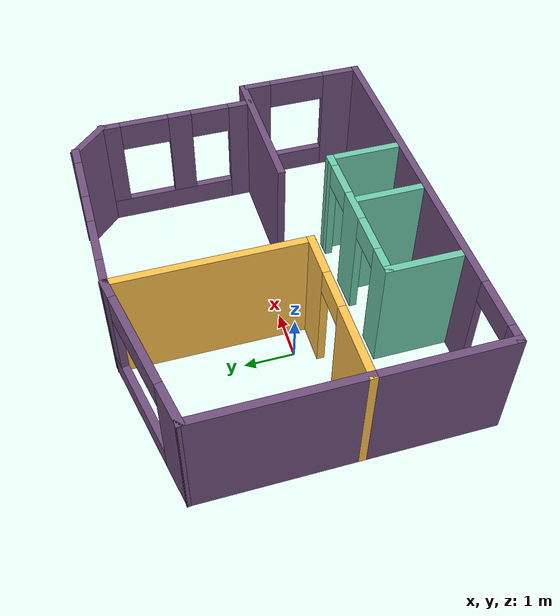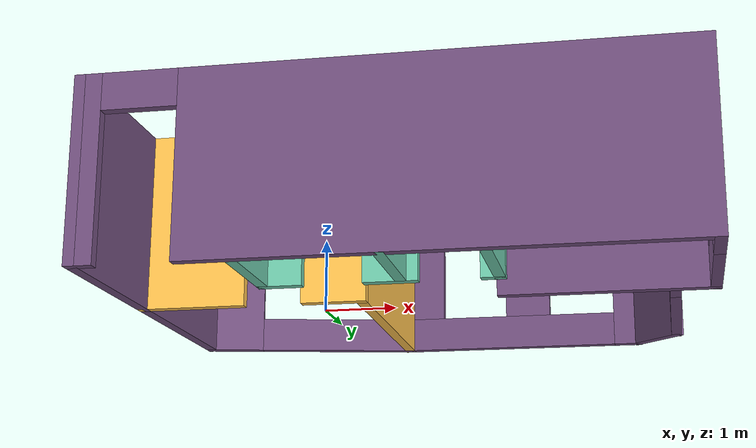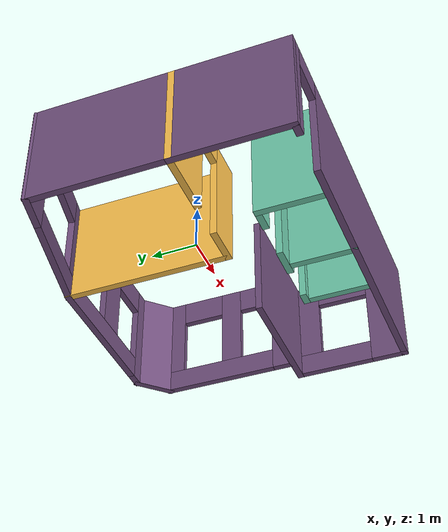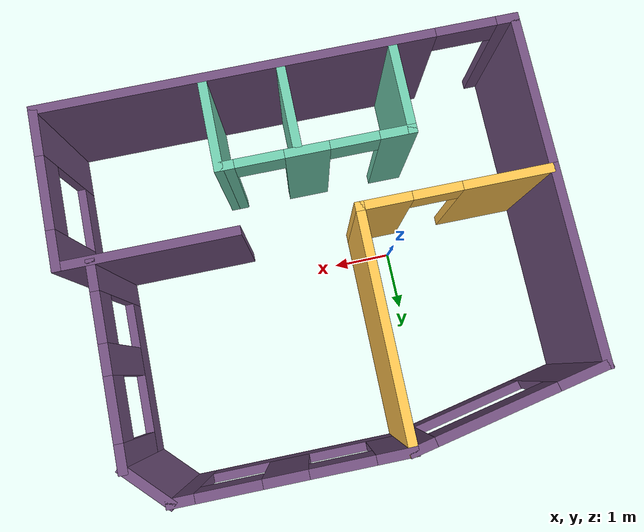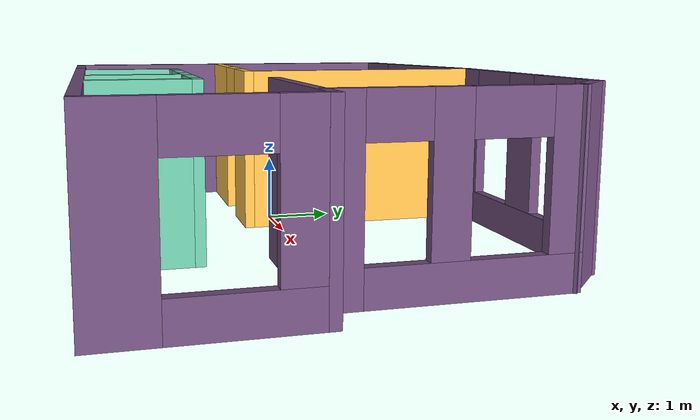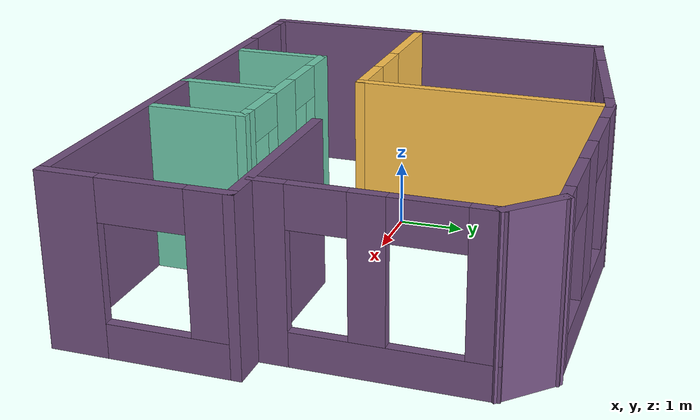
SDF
<?xml version='1.0'?>
<sdf version='1.6'>
  <model name='apartment-35'>
    <pose frame=''>1.41173 0.14806 0 0 -0 0</pose>
    <link name='Wall_0'>
      <pose frame=''>0.006768 -3.16806 0 0 -0 0</pose>
      <visual name='Wall_0_Visual_0'>
        <pose frame=''>-3.79978 0 1.25 0 -0 0</pose>
        <geometry>
          <box>
            <size>0.37543 0.15 2.5</size>
          </box>
        </geometry>
        <material>
          <script>
            <uri>file://media/materials/scripts/gazebo.material</uri>
            <name>Gazebo/Grey</name>
          </script>
          <ambient>0.443137 0.313726 0.494118 1</ambient>
        </material>
        <meta>
          <layer>0</layer>
        </meta>
      </visual>
      <collision name='Wall_0_Collision_0'>
        <geometry>
          <box>
            <size>0.37543 0.15 2.5</size>
          </box>
        </geometry>
        <pose frame=''>-3.79978 0 1.25 0 -0 0</pose>
      </collision>
      <visual name='Wall_0_Visual_1'>
        <pose frame=''>0.687715 0 1.25 0 -0 0</pose>
        <geometry>
          <box>
            <size>6.59957 0.15 2.5</size>
          </box>
        </geometry>
        <material>
          <script>
            <uri>file://media/materials/scripts/gazebo.material</uri>
            <name>Gazebo/Grey</name>
          </script>
          <ambient>0.443137 0.313726 0.494118 1</ambient>
        </material>
        <meta>
          <layer>0</layer>
        </meta>
      </visual>
      <collision name='Wall_0_Collision_1'>
        <geometry>
          <box>
            <size>6.59957 0.15 2.5</size>
          </box>
        </geometry>
        <pose frame=''>0.687715 0 1.25 0 -0 0</pose>
      </collision>
      <visual name='Wall_0_Visual_2'>
        <pose frame=''>-3.11207 0 2.25 0 -0 0</pose>
        <geometry>
          <box>
            <size>1 0.15 0.5</size>
          </box>
        </geometry>
        <material>
          <script>
            <uri>file://media/materials/scripts/gazebo.material</uri>
            <name>Gazebo/Grey</name>
          </script>
          <ambient>0.443137 0.313726 0.494118 1</ambient>
        </material>
        <meta>
          <layer>0</layer>
        </meta>
      </visual>
      <collision name='Wall_0_Collision_2'>
        <geometry>
          <box>
            <size>1 0.15 0.5</size>
          </box>
        </geometry>
        <pose frame=''>-3.11207 0 2.25 0 -0 0</pose>
      </collision>
    </link>
    <link name='Wall_10'>
      <pose frame=''>0.994046 3.13706 0 0 -0 -3.14153</pose>
      <visual name='Wall_10_Visual_0'>
        <pose frame=''>-1.66159 0 1.25 0 -0 0</pose>
        <geometry>
          <box>
            <size>0.426824 0.15 2.5</size>
          </box>
        </geometry>
        <material>
          <script>
            <uri>file://media/materials/scripts/gazebo.material</uri>
            <name>Gazebo/Grey</name>
          </script>
          <ambient>0.443137 0.313726 0.494118 1</ambient>
        </material>
        <meta>
          <layer>0</layer>
        </meta>
      </visual>
      <collision name='Wall_10_Collision_0'>
        <geometry>
          <box>
            <size>0.426824 0.15 2.5</size>
          </box>
        </geometry>
        <pose frame=''>-1.66159 0 1.25 0 -0 0</pose>
      </collision>
      <visual name='Wall_10_Visual_1'>
        <pose frame=''>0.213412 0 0.25 0 -0 0</pose>
        <geometry>
          <box>
            <size>3.32318 0.15 0.5</size>
          </box>
        </geometry>
        <material>
          <script>
            <uri>file://media/materials/scripts/gazebo.material</uri>
            <name>Gazebo/Grey</name>
          </script>
          <ambient>0.443137 0.313726 0.494118 1</ambient>
        </material>
        <meta>
          <layer>0</layer>
        </meta>
      </visual>
      <collision name='Wall_10_Collision_1'>
        <geometry>
          <box>
            <size>3.32318 0.15 0.5</size>
          </box>
        </geometry>
        <pose frame=''>0.213412 0 0.25 0 -0 0</pose>
      </collision>
      <visual name='Wall_10_Visual_2'>
        <pose frame=''>-0.103407 0 1.5 0 -0 0</pose>
        <geometry>
          <box>
            <size>0.689537 0.15 2</size>
          </box>
        </geometry>
        <material>
          <script>
            <uri>file://media/materials/scripts/gazebo.material</uri>
            <name>Gazebo/Grey</name>
          </script>
          <ambient>0.443137 0.313726 0.494118 1</ambient>
        </material>
        <meta>
          <layer>0</layer>
        </meta>
      </visual>
      <collision name='Wall_10_Collision_2'>
        <geometry>
          <box>
            <size>0.689537 0.15 2</size>
          </box>
        </geometry>
        <pose frame=''>-0.103407 0 1.5 0 -0 0</pose>
      </collision>
      <visual name='Wall_10_Visual_3'>
        <pose frame=''>1.55818 0 1.5 0 -0 0</pose>
        <geometry>
          <box>
            <size>0.633638 0.15 2</size>
          </box>
        </geometry>
        <material>
          <script>
            <uri>file://media/materials/scripts/gazebo.material</uri>
            <name>Gazebo/Grey</name>
          </script>
          <ambient>0.443137 0.313726 0.494118 1</ambient>
        </material>
        <meta>
          <layer>0</layer>
        </meta>
      </visual>
      <collision name='Wall_10_Collision_3'>
        <geometry>
          <box>
            <size>0.633638 0.15 2</size>
          </box>
        </geometry>
        <pose frame=''>1.55818 0 1.5 0 -0 0</pose>
      </collision>
      <visual name='Wall_10_Visual_4'>
        <pose frame=''>-0.948176 0 2.2 0 -0 0</pose>
        <geometry>
          <box>
            <size>1 0.15 0.6</size>
          </box>
        </geometry>
        <material>
          <script>
            <uri>file://media/materials/scripts/gazebo.material</uri>
            <name>Gazebo/Grey</name>
          </script>
          <ambient>0.443137 0.313726 0.494118 1</ambient>
        </material>
        <meta>
          <layer>0</layer>
        </meta>
      </visual>
      <collision name='Wall_10_Collision_4'>
        <geometry>
          <box>
            <size>1 0.15 0.6</size>
          </box>
        </geometry>
        <pose frame=''>-0.948176 0 2.2 0 -0 0</pose>
      </collision>
      <visual name='Wall_10_Visual_5'>
        <pose frame=''>0.741362 0 2.2 0 -0 0</pose>
        <geometry>
          <box>
            <size>1 0.15 0.6</size>
          </box>
        </geometry>
        <material>
          <script>
            <uri>file://media/materials/scripts/gazebo.material</uri>
            <name>Gazebo/Grey</name>
          </script>
          <ambient>0.443137 0.313726 0.494118 1</ambient>
        </material>
        <meta>
          <layer>0</layer>
        </meta>
      </visual>
      <collision name='Wall_10_Collision_5'>
        <geometry>
          <box>
            <size>1 0.15 0.6</size>
          </box>
        </geometry>
        <pose frame=''>0.741362 0 2.2 0 -0 0</pose>
      </collision>
    </link>
    <link name='Wall_11'>
      <collision name='Wall_11_Collision'>
        <geometry>
          <box>
            <size>3.901 0.15 2.5</size>
          </box>
        </geometry>
        <pose frame=''>0 0 1.25 0 -0 0</pose>
      </collision>
      <visual name='Wall_11_Visual'>
        <pose frame=''>0 0 1.25 0 -0 0</pose>
        <geometry>
          <box>
            <size>3.901 0.15 2.5</size>
          </box>
        </geometry>
        <material>
          <script>
            <uri>file://media/materials/scripts/gazebo.material</uri>
            <name>Gazebo/Grey</name>
          </script>
          <ambient>1 0.764706 0.305882 1</ambient>
        </material>
        <meta>
          <layer>0</layer>
        </meta>
      </visual>
      <pose frame=''>-0.805732 1.26144 0 0 -0 -1.5708</pose>
    </link>
    <link name='Wall_13'>
      <pose frame=''>-2.35573 -0.61406 0 0 -0 3.14159</pose>
      <visual name='Wall_13_Visual_0'>
        <pose frame=''>-1.16875 0 1.25 0 -0 0</pose>
        <geometry>
          <box>
            <size>0.912507 0.15 2.5</size>
          </box>
        </geometry>
        <material>
          <script>
            <uri>file://media/materials/scripts/gazebo.material</uri>
            <name>Gazebo/Grey</name>
          </script>
          <ambient>1 0.764706 0.305882 1</ambient>
        </material>
        <meta>
          <layer>0</layer>
        </meta>
      </visual>
      <collision name='Wall_13_Collision_0'>
        <geometry>
          <box>
            <size>0.912507 0.15 2.5</size>
          </box>
        </geometry>
        <pose frame=''>-1.16875 0 1.25 0 -0 0</pose>
      </collision>
      <visual name='Wall_13_Visual_1'>
        <pose frame=''>0.856253 0 1.25 0 -0 0</pose>
        <geometry>
          <box>
            <size>1.53749 0.15 2.5</size>
          </box>
        </geometry>
        <material>
          <script>
            <uri>file://media/materials/scripts/gazebo.material</uri>
            <name>Gazebo/Grey</name>
          </script>
          <ambient>1 0.764706 0.305882 1</ambient>
        </material>
        <meta>
          <layer>0</layer>
        </meta>
      </visual>
      <collision name='Wall_13_Collision_1'>
        <geometry>
          <box>
            <size>1.53749 0.15 2.5</size>
          </box>
        </geometry>
        <pose frame=''>0.856253 0 1.25 0 -0 0</pose>
      </collision>
      <visual name='Wall_13_Visual_2'>
        <pose frame=''>-0.312493 0 2.25 0 -0 0</pose>
        <geometry>
          <box>
            <size>0.8 0.15 0.5</size>
          </box>
        </geometry>
        <material>
          <script>
            <uri>file://media/materials/scripts/gazebo.material</uri>
            <name>Gazebo/Grey</name>
          </script>
          <ambient>1 0.764706 0.305882 1</ambient>
        </material>
        <meta>
          <layer>0</layer>
        </meta>
      </visual>
      <collision name='Wall_13_Collision_2'>
        <geometry>
          <box>
            <size>0.8 0.15 0.5</size>
          </box>
        </geometry>
        <pose frame=''>-0.312493 0 2.25 0 -0 0</pose>
      </collision>
    </link>
    <link name='Wall_15'>
      <collision name='Wall_15_Collision'>
        <geometry>
          <box>
            <size>2.70438 0.15 2.5</size>
          </box>
        </geometry>
        <pose frame=''>0 0 1.25 0 -0 0</pose>
      </collision>
      <visual name='Wall_15_Visual'>
        <pose frame=''>0 0 1.25 0 -0 0</pose>
        <geometry>
          <box>
            <size>2.70438 0.15 2.5</size>
          </box>
        </geometry>
        <material>
          <script>
            <uri>file://media/materials/scripts/gazebo.material</uri>
            <name>Gazebo/Grey</name>
          </script>
          <ambient>0.443137 0.313726 0.494118 1</ambient>
        </material>
        <meta>
          <layer>0</layer>
        </meta>
      </visual>
      <pose frame=''>-3.90573 -1.89106 0 0 -0 -1.5708</pose>
    </link>
    <link name='Wall_17'>
      <collision name='Wall_17_Collision'>
        <geometry>
          <box>
            <size>3.25 0.15 2.5</size>
          </box>
        </geometry>
        <pose frame=''>0 0 1.25 0 -0 0</pose>
      </collision>
      <visual name='Wall_17_Visual'>
        <pose frame=''>0 0 1.25 0 -0 0</pose>
        <geometry>
          <box>
            <size>3.25 0.15 2.5</size>
          </box>
        </geometry>
        <material>
          <script>
            <uri>file://media/materials/scripts/gazebo.material</uri>
            <name>Gazebo/Grey</name>
          </script>
          <ambient>0.443137 0.313726 0.494118 1</ambient>
        </material>
        <meta>
          <layer>0</layer>
        </meta>
      </visual>
      <pose frame=''>-3.90573 0.93594 0 0 -0 1.5708</pose>
    </link>
    <link name='Wall_18'>
      <pose frame=''>-2.35573 2.81144 0 0 -0 0.206992</pose>
      <visual name='Wall_18_Visual_0'>
        <pose frame=''>-1.2169 0 1.25 0 -0 0</pose>
        <geometry>
          <box>
            <size>0.883821 0.15 2.5</size>
          </box>
        </geometry>
        <material>
          <script>
            <uri>file://media/materials/scripts/gazebo.material</uri>
            <name>Gazebo/Grey</name>
          </script>
          <ambient>0.443137 0.313726 0.494118 1</ambient>
        </material>
        <meta>
          <layer>0</layer>
        </meta>
      </visual>
      <collision name='Wall_18_Collision_0'>
        <geometry>
          <box>
            <size>0.883821 0.15 2.5</size>
          </box>
        </geometry>
        <pose frame=''>-1.2169 0 1.25 0 -0 0</pose>
      </collision>
      <visual name='Wall_18_Visual_1'>
        <pose frame=''>0.441911 0 0.25 0 -0 0</pose>
        <geometry>
          <box>
            <size>2.4338 0.15 0.5</size>
          </box>
        </geometry>
        <material>
          <script>
            <uri>file://media/materials/scripts/gazebo.material</uri>
            <name>Gazebo/Grey</name>
          </script>
          <ambient>0.443137 0.313726 0.494118 1</ambient>
        </material>
        <meta>
          <layer>0</layer>
        </meta>
      </visual>
      <collision name='Wall_18_Collision_1'>
        <geometry>
          <box>
            <size>2.4338 0.15 0.5</size>
          </box>
        </geometry>
        <pose frame=''>0.441911 0 0.25 0 -0 0</pose>
      </collision>
      <visual name='Wall_18_Visual_2'>
        <pose frame=''>1.44191 0 1.5 0 -0 0</pose>
        <geometry>
          <box>
            <size>0.433796 0.15 2</size>
          </box>
        </geometry>
        <material>
          <script>
            <uri>file://media/materials/scripts/gazebo.material</uri>
            <name>Gazebo/Grey</name>
          </script>
          <ambient>0.443137 0.313726 0.494118 1</ambient>
        </material>
        <meta>
          <layer>0</layer>
        </meta>
      </visual>
      <collision name='Wall_18_Collision_2'>
        <geometry>
          <box>
            <size>0.433796 0.15 2</size>
          </box>
        </geometry>
        <pose frame=''>1.44191 0 1.5 0 -0 0</pose>
      </collision>
      <visual name='Wall_18_Visual_3'>
        <pose frame=''>0.225013 0 2.2 0 -0 0</pose>
        <geometry>
          <box>
            <size>2 0.15 0.6</size>
          </box>
        </geometry>
        <material>
          <script>
            <uri>file://media/materials/scripts/gazebo.material</uri>
            <name>Gazebo/Grey</name>
          </script>
          <ambient>0.443137 0.313726 0.494118 1</ambient>
        </material>
        <meta>
          <layer>0</layer>
        </meta>
      </visual>
      <collision name='Wall_18_Collision_3'>
        <geometry>
          <box>
            <size>2 0.15 0.6</size>
          </box>
        </geometry>
        <pose frame=''>0.225013 0 2.2 0 -0 0</pose>
      </collision>
    </link>
    <link name='Wall_20'>
      <collision name='Wall_20_Collision'>
        <geometry>
          <box>
            <size>1.5 0.15 2.5</size>
          </box>
        </geometry>
        <pose frame=''>0 0 1.25 0 -0 0</pose>
      </collision>
      <visual name='Wall_20_Visual'>
        <pose frame=''>0 0 1.25 0 -0 0</pose>
        <geometry>
          <box>
            <size>1.5 0.15 2.5</size>
          </box>
        </geometry>
        <material>
          <script>
            <uri>file://media/materials/scripts/gazebo.material</uri>
            <name>Gazebo/Grey</name>
          </script>
          <ambient>0.435294 0.796078 0.67451 1</ambient>
        </material>
        <meta>
          <layer>0</layer>
        </meta>
      </visual>
      <pose frame=''>1.21959 -2.34338 0 0 -0 -1.5708</pose>
    </link>
    <link name='Wall_22'>
      <pose frame=''>-0.330406 -1.66838 0 0 -0 3.14159</pose>
      <visual name='Wall_22_Visual_0'>
        <pose frame=''>-1.46347 0 1.25 0 -0 0</pose>
        <geometry>
          <box>
            <size>0.323069 0.15 2.5</size>
          </box>
        </geometry>
        <material>
          <script>
            <uri>file://media/materials/scripts/gazebo.material</uri>
            <name>Gazebo/Grey</name>
          </script>
          <ambient>0.435294 0.796078 0.67451 1</ambient>
        </material>
        <meta>
          <layer>0</layer>
        </meta>
      </visual>
      <collision name='Wall_22_Collision_0'>
        <geometry>
          <box>
            <size>0.323069 0.15 2.5</size>
          </box>
        </geometry>
        <pose frame=''>-1.46347 0 1.25 0 -0 0</pose>
      </collision>
      <visual name='Wall_22_Visual_1'>
        <pose frame=''>-0.137615 0 1.25 0 -0 0</pose>
        <geometry>
          <box>
            <size>0.728631 0.15 2.5</size>
          </box>
        </geometry>
        <material>
          <script>
            <uri>file://media/materials/scripts/gazebo.material</uri>
            <name>Gazebo/Grey</name>
          </script>
          <ambient>0.435294 0.796078 0.67451 1</ambient>
        </material>
        <meta>
          <layer>0</layer>
        </meta>
      </visual>
      <collision name='Wall_22_Collision_1'>
        <geometry>
          <box>
            <size>0.728631 0.15 2.5</size>
          </box>
        </geometry>
        <pose frame=''>-0.137615 0 1.25 0 -0 0</pose>
      </collision>
      <visual name='Wall_22_Visual_2'>
        <pose frame=''>1.32585 0 1.25 0 -0 0</pose>
        <geometry>
          <box>
            <size>0.5983 0.15 2.5</size>
          </box>
        </geometry>
        <material>
          <script>
            <uri>file://media/materials/scripts/gazebo.material</uri>
            <name>Gazebo/Grey</name>
          </script>
          <ambient>0.435294 0.796078 0.67451 1</ambient>
        </material>
        <meta>
          <layer>0</layer>
        </meta>
      </visual>
      <collision name='Wall_22_Collision_2'>
        <geometry>
          <box>
            <size>0.5983 0.15 2.5</size>
          </box>
        </geometry>
        <pose frame=''>1.32585 0 1.25 0 -0 0</pose>
      </collision>
      <visual name='Wall_22_Visual_3'>
        <pose frame=''>-0.901931 0 2.25 0 -0 0</pose>
        <geometry>
          <box>
            <size>0.8 0.15 0.5</size>
          </box>
        </geometry>
        <material>
          <script>
            <uri>file://media/materials/scripts/gazebo.material</uri>
            <name>Gazebo/Grey</name>
          </script>
          <ambient>0.435294 0.796078 0.67451 1</ambient>
        </material>
        <meta>
          <layer>0</layer>
        </meta>
      </visual>
      <collision name='Wall_22_Collision_3'>
        <geometry>
          <box>
            <size>0.8 0.15 0.5</size>
          </box>
        </geometry>
        <pose frame=''>-0.901931 0 2.25 0 -0 0</pose>
      </collision>
      <visual name='Wall_22_Visual_4'>
        <pose frame=''>0.6267 0 2.25 0 -0 0</pose>
        <geometry>
          <box>
            <size>0.8 0.15 0.5</size>
          </box>
        </geometry>
        <material>
          <script>
            <uri>file://media/materials/scripts/gazebo.material</uri>
            <name>Gazebo/Grey</name>
          </script>
          <ambient>0.435294 0.796078 0.67451 1</ambient>
        </material>
        <meta>
          <layer>0</layer>
        </meta>
      </visual>
      <collision name='Wall_22_Collision_4'>
        <geometry>
          <box>
            <size>0.8 0.15 0.5</size>
          </box>
        </geometry>
        <pose frame=''>0.6267 0 2.25 0 -0 0</pose>
      </collision>
    </link>
    <link name='Wall_23'>
      <collision name='Wall_23_Collision'>
        <geometry>
          <box>
            <size>1.5 0.15 2.5</size>
          </box>
        </geometry>
        <pose frame=''>0 0 1.25 0 -0 0</pose>
      </collision>
      <visual name='Wall_23_Visual'>
        <pose frame=''>0 0 1.25 0 -0 0</pose>
        <geometry>
          <box>
            <size>1.5 0.15 2.5</size>
          </box>
        </geometry>
        <material>
          <script>
            <uri>file://media/materials/scripts/gazebo.material</uri>
            <name>Gazebo/Grey</name>
          </script>
          <ambient>0.435294 0.796078 0.67451 1</ambient>
        </material>
        <meta>
          <layer>0</layer>
        </meta>
      </visual>
      <pose frame=''>-1.88041 -2.34338 0 0 -0 -1.5708</pose>
    </link>
    <link name='Wall_27'>
      <collision name='Wall_27_Collision'>
        <geometry>
          <box>
            <size>1.5 0.15 2.5</size>
          </box>
        </geometry>
        <pose frame=''>0 0 1.25 0 -0 0</pose>
      </collision>
      <visual name='Wall_27_Visual'>
        <pose frame=''>0 0 1.25 0 -0 0</pose>
        <geometry>
          <box>
            <size>1.5 0.15 2.5</size>
          </box>
        </geometry>
        <material>
          <script>
            <uri>file://media/materials/scripts/gazebo.material</uri>
            <name>Gazebo/Grey</name>
          </script>
          <ambient>0.435294 0.796078 0.67451 1</ambient>
        </material>
        <meta>
          <layer>0</layer>
        </meta>
      </visual>
      <pose frame=''>-0.051995 -2.47975 0 0 -0 1.5708</pose>
    </link>
    <link name='Wall_3'>
      <pose frame=''>3.91927 -1.89106 0 0 -0 1.5708</pose>
      <visual name='Wall_3_Visual_0'>
        <pose frame=''>-0.932156 0 1.25 0 -0 0</pose>
        <geometry>
          <box>
            <size>0.839473 0.15 2.5</size>
          </box>
        </geometry>
        <material>
          <script>
            <uri>file://media/materials/scripts/gazebo.material</uri>
            <name>Gazebo/Grey</name>
          </script>
          <ambient>0.443137 0.313726 0.494118 1</ambient>
        </material>
        <meta>
          <layer>0</layer>
        </meta>
      </visual>
      <collision name='Wall_3_Collision_0'>
        <geometry>
          <box>
            <size>0.839473 0.15 2.5</size>
          </box>
        </geometry>
        <pose frame=''>-0.932156 0 1.25 0 -0 0</pose>
      </collision>
      <visual name='Wall_3_Visual_1'>
        <pose frame=''>0.419736 0 0.25 0 -0 0</pose>
        <geometry>
          <box>
            <size>1.86431 0.15 0.5</size>
          </box>
        </geometry>
        <material>
          <script>
            <uri>file://media/materials/scripts/gazebo.material</uri>
            <name>Gazebo/Grey</name>
          </script>
          <ambient>0.443137 0.313726 0.494118 1</ambient>
        </material>
        <meta>
          <layer>0</layer>
        </meta>
      </visual>
      <collision name='Wall_3_Collision_1'>
        <geometry>
          <box>
            <size>1.86431 0.15 0.5</size>
          </box>
        </geometry>
        <pose frame=''>0.419736 0 0.25 0 -0 0</pose>
      </collision>
      <visual name='Wall_3_Visual_2'>
        <pose frame=''>1.01974 0 1.5 0 -0 0</pose>
        <geometry>
          <box>
            <size>0.664312 0.15 2</size>
          </box>
        </geometry>
        <material>
          <script>
            <uri>file://media/materials/scripts/gazebo.material</uri>
            <name>Gazebo/Grey</name>
          </script>
          <ambient>0.443137 0.313726 0.494118 1</ambient>
        </material>
        <meta>
          <layer>0</layer>
        </meta>
      </visual>
      <collision name='Wall_3_Collision_2'>
        <geometry>
          <box>
            <size>0.664312 0.15 2</size>
          </box>
        </geometry>
        <pose frame=''>1.01974 0 1.5 0 -0 0</pose>
      </collision>
      <visual name='Wall_3_Visual_3'>
        <pose frame=''>0.087581 0 2.2 0 -0 0</pose>
        <geometry>
          <box>
            <size>1.2 0.15 0.6</size>
          </box>
        </geometry>
        <material>
          <script>
            <uri>file://media/materials/scripts/gazebo.material</uri>
            <name>Gazebo/Grey</name>
          </script>
          <ambient>0.443137 0.313726 0.494118 1</ambient>
        </material>
        <meta>
          <layer>0</layer>
        </meta>
      </visual>
      <collision name='Wall_3_Collision_3'>
        <geometry>
          <box>
            <size>1.2 0.15 0.6</size>
          </box>
        </geometry>
        <pose frame=''>0.087581 0 2.2 0 -0 0</pose>
      </collision>
    </link>
    <link name='Wall_4'>
      <collision name='Wall_4_Collision'>
        <geometry>
          <box>
            <size>2.93855 0.15 2.5</size>
          </box>
        </geometry>
        <pose frame=''>0 0 1.25 0 -0 0</pose>
      </collision>
      <visual name='Wall_4_Visual'>
        <pose frame=''>0 0 1.25 0 -0 0</pose>
        <geometry>
          <box>
            <size>2.93855 0.15 2.5</size>
          </box>
        </geometry>
        <material>
          <script>
            <uri>file://media/materials/scripts/gazebo.material</uri>
            <name>Gazebo/Grey</name>
          </script>
          <ambient>0.443137 0.313726 0.494118 1</ambient>
        </material>
        <meta>
          <layer>0</layer>
        </meta>
      </visual>
      <pose frame=''>2.52527 -0.61406 0 0 -0 3.14159</pose>
    </link>
    <link name='Wall_7'>
      <pose frame=''>3.39486 0.986143 0 0 -0 1.5708</pose>
      <visual name='Wall_7_Visual_0'>
        <pose frame=''>-1.37146 0 1.25 0 -0 0</pose>
        <geometry>
          <box>
            <size>0.507076 0.15 2.5</size>
          </box>
        </geometry>
        <material>
          <script>
            <uri>file://media/materials/scripts/gazebo.material</uri>
            <name>Gazebo/Grey</name>
          </script>
          <ambient>0.443137 0.313726 0.494118 1</ambient>
        </material>
        <meta>
          <layer>0</layer>
        </meta>
      </visual>
      <collision name='Wall_7_Collision_0'>
        <geometry>
          <box>
            <size>0.507076 0.15 2.5</size>
          </box>
        </geometry>
        <pose frame=''>-1.37146 0 1.25 0 -0 0</pose>
      </collision>
      <visual name='Wall_7_Visual_1'>
        <pose frame=''>0.253538 0 0.25 0 -0 0</pose>
        <geometry>
          <box>
            <size>2.74292 0.15 0.5</size>
          </box>
        </geometry>
        <material>
          <script>
            <uri>file://media/materials/scripts/gazebo.material</uri>
            <name>Gazebo/Grey</name>
          </script>
          <ambient>0.443137 0.313726 0.494118 1</ambient>
        </material>
        <meta>
          <layer>0</layer>
        </meta>
      </visual>
      <collision name='Wall_7_Collision_1'>
        <geometry>
          <box>
            <size>2.74292 0.15 0.5</size>
          </box>
        </geometry>
        <pose frame=''>0.253538 0 0.25 0 -0 0</pose>
      </collision>
      <visual name='Wall_7_Visual_2'>
        <pose frame=''>-0.074006 0 1.5 0 -0 0</pose>
        <geometry>
          <box>
            <size>0.487836 0.15 2</size>
          </box>
        </geometry>
        <material>
          <script>
            <uri>file://media/materials/scripts/gazebo.material</uri>
            <name>Gazebo/Grey</name>
          </script>
          <ambient>0.443137 0.313726 0.494118 1</ambient>
        </material>
        <meta>
          <layer>0</layer>
        </meta>
      </visual>
      <collision name='Wall_7_Collision_2'>
        <geometry>
          <box>
            <size>0.487836 0.15 2</size>
          </box>
        </geometry>
        <pose frame=''>-0.074006 0 1.5 0 -0 0</pose>
      </collision>
      <visual name='Wall_7_Visual_3'>
        <pose frame=''>1.39746 0 1.5 0 -0 0</pose>
        <geometry>
          <box>
            <size>0.455088 0.15 2</size>
          </box>
        </geometry>
        <material>
          <script>
            <uri>file://media/materials/scripts/gazebo.material</uri>
            <name>Gazebo/Grey</name>
          </script>
          <ambient>0.443137 0.313726 0.494118 1</ambient>
        </material>
        <meta>
          <layer>0</layer>
        </meta>
      </visual>
      <collision name='Wall_7_Collision_3'>
        <geometry>
          <box>
            <size>0.455088 0.15 2</size>
          </box>
        </geometry>
        <pose frame=''>1.39746 0 1.5 0 -0 0</pose>
      </collision>
      <visual name='Wall_7_Visual_4'>
        <pose frame=''>-0.717924 0 2.2 0 -0 0</pose>
        <geometry>
          <box>
            <size>0.8 0.15 0.6</size>
          </box>
        </geometry>
        <material>
          <script>
            <uri>file://media/materials/scripts/gazebo.material</uri>
            <name>Gazebo/Grey</name>
          </script>
          <ambient>0.443137 0.313726 0.494118 1</ambient>
        </material>
        <meta>
          <layer>0</layer>
        </meta>
      </visual>
      <collision name='Wall_7_Collision_4'>
        <geometry>
          <box>
            <size>0.8 0.15 0.6</size>
          </box>
        </geometry>
        <pose frame=''>-0.717924 0 2.2 0 -0 0</pose>
      </collision>
      <visual name='Wall_7_Visual_5'>
        <pose frame=''>0.669912 0 2.2 0 -0 0</pose>
        <geometry>
          <box>
            <size>1 0.15 0.6</size>
          </box>
        </geometry>
        <material>
          <script>
            <uri>file://media/materials/scripts/gazebo.material</uri>
            <name>Gazebo/Grey</name>
          </script>
          <ambient>0.443137 0.313726 0.494118 1</ambient>
        </material>
        <meta>
          <layer>0</layer>
        </meta>
      </visual>
      <collision name='Wall_7_Collision_5'>
        <geometry>
          <box>
            <size>1 0.15 0.6</size>
          </box>
        </geometry>
        <pose frame=''>0.669912 0 2.2 0 -0 0</pose>
      </collision>
    </link>
    <link name='Wall_8'>
      <collision name='Wall_8_Collision'>
        <geometry>
          <box>
            <size>1 0.15 2.5</size>
          </box>
        </geometry>
        <pose frame=''>0 0 1.25 0 -0 0</pose>
      </collision>
      <visual name='Wall_8_Visual'>
        <pose frame=''>0 0 1.25 0 -0 0</pose>
        <geometry>
          <box>
            <size>1 0.15 2.5</size>
          </box>
        </geometry>
        <material>
          <script>
            <uri>file://media/materials/scripts/gazebo.material</uri>
            <name>Gazebo/Grey</name>
          </script>
          <ambient>0.443137 0.313726 0.494118 1</ambient>
        </material>
        <meta>
          <layer>0</layer>
        </meta>
      </visual>
      <pose frame=''>3.09434 2.83666 0 0 -0 2.35619</pose>
    </link>
    <static>1</static>
  </model>
</sdf>
